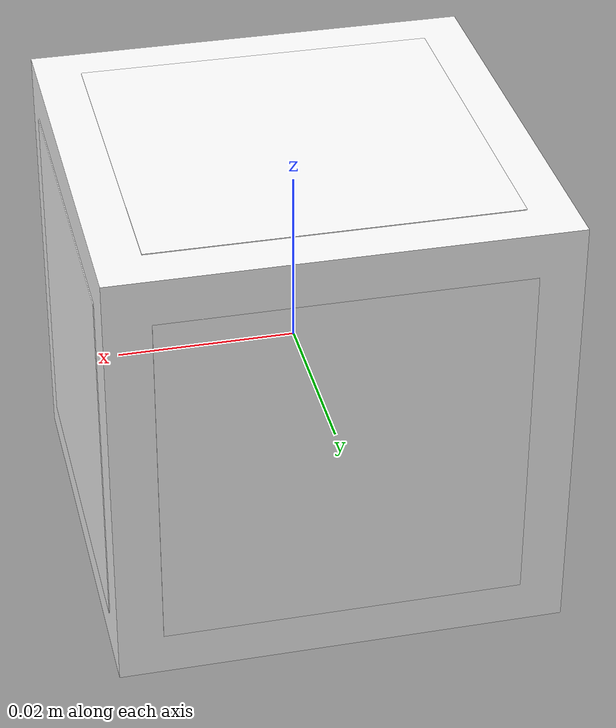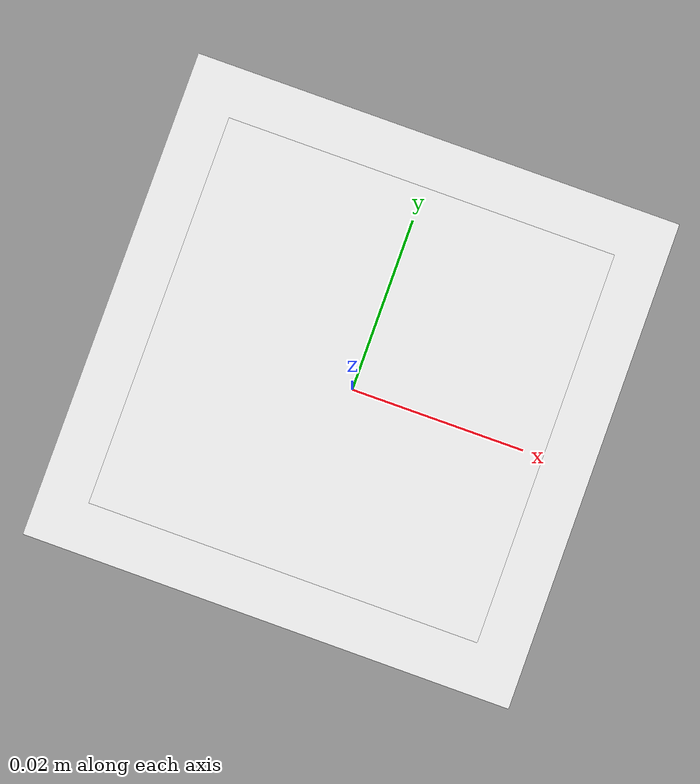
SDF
<?xml version="1.0" ?>
<sdf version='1.10'>
  <model name='aruco_cube_2'>
    <link name="cube_link">
        <inertial>
            <mass>0.05</mass>
            <inertia>
                <ixx>0.0000208</ixx>
                <iyy>0.0000208</iyy>
                <izz>0.0000208</izz>
                <ixy>0</ixy>
                <ixz>0</ixz>
                <iyz>0</iyz>
            </inertia>
        </inertial>

        <collision name="cube_collision">
            <geometry>
                <box>
                <size>0.05 0.05 0.05</size>
                </box>
            </geometry>

            <surface>
                <friction>
                <ode>
                    <mu>50</mu>
                    <mu2>50</mu2>
                </ode>
                </friction>
                <!-- kp(강성)/kd(감쇠)를 안 정해두면 물리엔진 기본값(무른 편)을 써서 그리퍼
                     손가락이 박스 표면을 파고든 채로 힘 균형을 맞춤(시각적으로 뚫고 들어간
                     것처럼 보임). 값을 높여서 덜 파고들게 함. -->
                <contact>
                <ode>
                    <kp>1e8</kp>
                    <kd>1</kd>
                </ode>
                </contact>
            </surface>
        </collision>

        <visual name="cube_visual">
            <geometry>
                <box>
                <size>0.05 0.05 0.05</size>
                </box>
            </geometry>
            <material>
                <ambient>1 1 1 1</ambient>
                <diffuse>1 1 1 1</diffuse>
                <specular>0.1 0.1 0.1 1</specular>
            </material>
        </visual>

        <visual name="aruco_top_visual">
            <pose>0 0 0.0251 0 0 0</pose>
            <geometry>
                <box>
                    <size>0.04 0.04 0.0001</size>
                </box>
            </geometry>
            <material>
                <ambient>1 1 1 1</ambient>
                <diffuse>1 1 1 1</diffuse>
                <pbr>
                    <metal>
                        <albedo_map>
                            material/textures/aruco_1.png
                        </albedo_map>
                        <roughness>1.0</roughness>
                        <metalness>0.0</metalness>
                    </metal>
                </pbr>
            </material>
        </visual>
        <visual name="aruco_bottom_visual">
            <pose>0 0 -0.0251 0 3.1416 0</pose>
            <geometry>
                <box>
                    <size>0.04 0.04 0.0001</size>
                </box>
            </geometry>
            <material>
                <ambient>1 1 1 1</ambient>
                <diffuse>1 1 1 1</diffuse>
                <pbr>
                    <metal>
                        <albedo_map>
                            material/textures/aruco_1.png
                        </albedo_map>
                        <roughness>1.0</roughness>
                        <metalness>0.0</metalness>
                    </metal>
                </pbr>
            </material>
        </visual>
        <visual name="aruco_posx_visual">
            <pose>0.0251 0 0 0 1.5708 0</pose>
            <geometry>
                <box>
                    <size>0.04 0.04 0.0001</size>
                </box>
            </geometry>
            <material>
                <ambient>1 1 1 1</ambient>
                <diffuse>1 1 1 1</diffuse>
                <pbr>
                    <metal>
                        <albedo_map>
                            material/textures/aruco_1.png
                        </albedo_map>
                        <roughness>1.0</roughness>
                        <metalness>0.0</metalness>
                    </metal>
                </pbr>
            </material>
        </visual>
        <visual name="aruco_negx_visual">
            <pose>-0.0251 0 0 0 -1.5708 0</pose>
            <geometry>
                <box>
                    <size>0.04 0.04 0.0001</size>
                </box>
            </geometry>
            <material>
                <ambient>1 1 1 1</ambient>
                <diffuse>1 1 1 1</diffuse>
                <pbr>
                    <metal>
                        <albedo_map>
                            material/textures/aruco_1.png
                        </albedo_map>
                        <roughness>1.0</roughness>
                        <metalness>0.0</metalness>
                    </metal>
                </pbr>
            </material>
        </visual>
        <visual name="aruco_posy_visual">
            <pose>0 0.0251 0 -1.5708 0 0</pose>
            <geometry>
                <box>
                    <size>0.04 0.04 0.0001</size>
                </box>
            </geometry>
            <material>
                <ambient>1 1 1 1</ambient>
                <diffuse>1 1 1 1</diffuse>
                <pbr>
                    <metal>
                        <albedo_map>
                            material/textures/aruco_1.png
                        </albedo_map>
                        <roughness>1.0</roughness>
                        <metalness>0.0</metalness>
                    </metal>
                </pbr>
            </material>
        </visual>
        <visual name="aruco_negy_visual">
            <pose>0 -0.0251 0 1.5708 0 0</pose>
            <geometry>
                <box>
                    <size>0.04 0.04 0.0001</size>
                </box>
            </geometry>
            <material>
                <ambient>1 1 1 1</ambient>
                <diffuse>1 1 1 1</diffuse>
                <pbr>
                    <metal>
                        <albedo_map>
                            material/textures/aruco_1.png
                        </albedo_map>
                        <roughness>1.0</roughness>
                        <metalness>0.0</metalness>
                    </metal>
                </pbr>
            </material>
        </visual>

    </link>
  </model>
</sdf>
